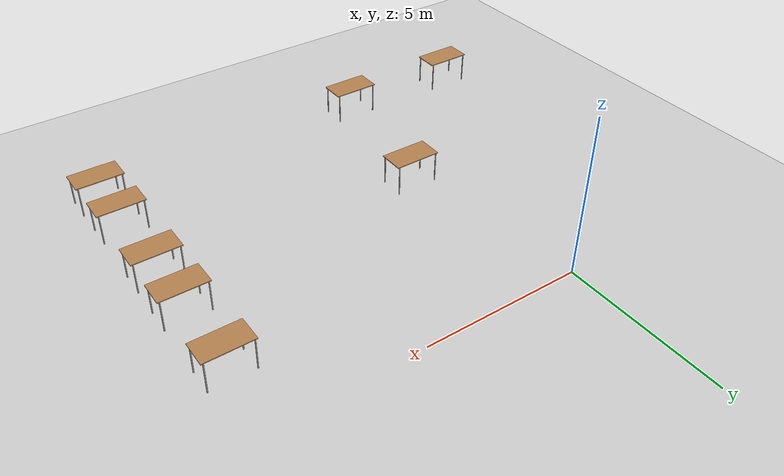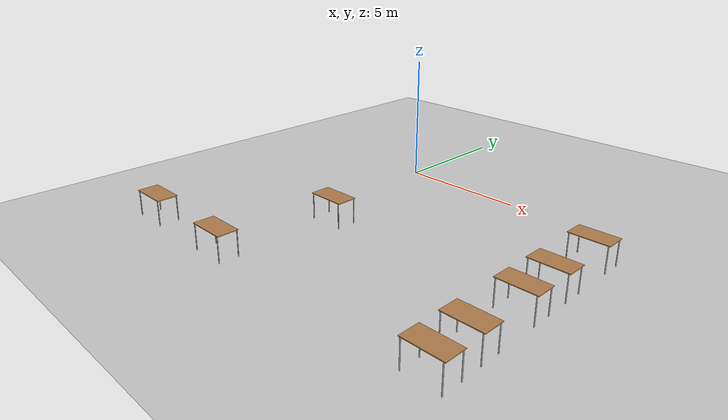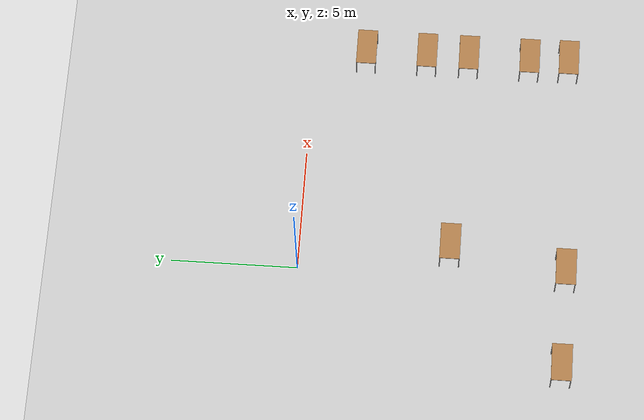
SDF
<sdf version="1.6">
 <world name="default">
  <model name="ground_plane">
   <static>1</static>
   <link name="link">
    <collision name="collision">
     <geometry><plane><normal>0 0 1</normal><size>100 100</size></plane></geometry>
     <surface><friction><ode><mu>100</mu><mu2>50</mu2></ode></friction></surface>
    </collision>
    <visual name="visual">
     <cast_shadows>0</cast_shadows>
     <geometry><plane><normal>0 0 1</normal><size>100 100</size></plane></geometry>
     <material>
      <script><uri>file://media/materials/scripts/gazebo.material</uri><name>Gazebo/Grey</name></script>
     </material>
    </visual>
   </link>
  </model>
  <model name="table_clone_1">
   <static>1</static>
   <link name="link">
    <collision name="surface">
     <pose>0 0 1 0 -0 0</pose>
     <geometry><box><size>1.5 0.8 0.03</size></box></geometry>
     <surface><friction><ode><mu>0.6</mu><mu2>0.6</mu2></ode></friction></surface>
    </collision>
    <visual name="visual1">
     <pose>0 0 1 0 -0 0</pose>
     <geometry><box><size>1.5 0.8 0.03</size></box></geometry>
     <material>
      <script><uri>file://media/materials/scripts/gazebo.material</uri><name>Gazebo/Wood</name></script>
     </material>
    </visual>
    <collision name="front_left_leg">
     <pose>0.68 0.38 0.5 0 -0 0</pose>
     <geometry><cylinder><radius>0.02</radius><length>1</length></cylinder></geometry>
    </collision>
    <visual name="front_left_leg">
     <pose>0.68 0.38 0.5 0 -0 0</pose>
     <geometry><cylinder><radius>0.02</radius><length>1</length></cylinder></geometry>
     <material>
      <script><uri>file://media/materials/scripts/gazebo.material</uri><name>Gazebo/Grey</name></script>
     </material>
    </visual>
    <collision name="front_right_leg">
     <pose>0.68 -0.38 0.5 0 -0 0</pose>
     <geometry><cylinder><radius>0.02</radius><length>1</length></cylinder></geometry>
    </collision>
    <visual name="front_right_leg">
     <pose>0.68 -0.38 0.5 0 -0 0</pose>
     <geometry><cylinder><radius>0.02</radius><length>1</length></cylinder></geometry>
     <material>
      <script><uri>file://media/materials/scripts/gazebo.material</uri><name>Gazebo/Grey</name></script>
     </material>
    </visual>
    <collision name="back_right_leg">
     <pose>-0.68 -0.38 0.5 0 -0 0</pose>
     <geometry><cylinder><radius>0.02</radius><length>1</length></cylinder></geometry>
    </collision>
    <visual name="back_right_leg">
     <pose>-0.68 -0.38 0.5 0 -0 0</pose>
     <geometry><cylinder><radius>0.02</radius><length>1</length></cylinder></geometry>
     <material>
      <script><uri>file://media/materials/scripts/gazebo.material</uri><name>Gazebo/Grey</name></script>
     </material>
    </visual>
    <collision name="back_left_leg">
     <pose>-0.68 0.38 0.5 0 -0 0</pose>
     <geometry><cylinder><radius>0.02</radius><length>1</length></cylinder></geometry>
    </collision>
    <visual name="back_left_leg">
     <pose>-0.68 0.38 0.5 0 -0 0</pose>
     <geometry><cylinder><radius>0.02</radius><length>1</length></cylinder></geometry>
     <material>
      <script><uri>file://media/materials/scripts/gazebo.material</uri><name>Gazebo/Grey</name></script>
     </material>
    </visual>
   </link>
   <pose>-3.63938 -10.5095 0 0 -0 0</pose>
  </model>
  <model name="table_clone_2">
   <static>1</static>
   <link name="link">
    <collision name="surface">
     <pose>0 0 1 0 -0 0</pose>
     <geometry><box><size>1.5 0.8 0.03</size></box></geometry>
     <surface><friction><ode><mu>0.6</mu><mu2>0.6</mu2></ode></friction></surface>
    </collision>
    <visual name="visual1">
     <pose>0 0 1 0 -0 0</pose>
     <geometry><box><size>1.5 0.8 0.03</size></box></geometry>
     <material>
      <script><uri>file://media/materials/scripts/gazebo.material</uri><name>Gazebo/Wood</name></script>
     </material>
    </visual>
    <collision name="front_left_leg">
     <pose>0.68 0.38 0.5 0 -0 0</pose>
     <geometry><cylinder><radius>0.02</radius><length>1</length></cylinder></geometry>
    </collision>
    <visual name="front_left_leg">
     <pose>0.68 0.38 0.5 0 -0 0</pose>
     <geometry><cylinder><radius>0.02</radius><length>1</length></cylinder></geometry>
     <material>
      <script><uri>file://media/materials/scripts/gazebo.material</uri><name>Gazebo/Grey</name></script>
     </material>
    </visual>
    <collision name="front_right_leg">
     <pose>0.68 -0.38 0.5 0 -0 0</pose>
     <geometry><cylinder><radius>0.02</radius><length>1</length></cylinder></geometry>
    </collision>
    <visual name="front_right_leg">
     <pose>0.68 -0.38 0.5 0 -0 0</pose>
     <geometry><cylinder><radius>0.02</radius><length>1</length></cylinder></geometry>
     <material>
      <script><uri>file://media/materials/scripts/gazebo.material</uri><name>Gazebo/Grey</name></script>
     </material>
    </visual>
    <collision name="back_right_leg">
     <pose>-0.68 -0.38 0.5 0 -0 0</pose>
     <geometry><cylinder><radius>0.02</radius><length>1</length></cylinder></geometry>
    </collision>
    <visual name="back_right_leg">
     <pose>-0.68 -0.38 0.5 0 -0 0</pose>
     <geometry><cylinder><radius>0.02</radius><length>1</length></cylinder></geometry>
     <material>
      <script><uri>file://media/materials/scripts/gazebo.material</uri><name>Gazebo/Grey</name></script>
     </material>
    </visual>
    <collision name="back_left_leg">
     <pose>-0.68 0.38 0.5 0 -0 0</pose>
     <geometry><cylinder><radius>0.02</radius><length>1</length></cylinder></geometry>
    </collision>
    <visual name="back_left_leg">
     <pose>-0.68 0.38 0.5 0 -0 0</pose>
     <geometry><cylinder><radius>0.02</radius><length>1</length></cylinder></geometry>
     <material>
      <script><uri>file://media/materials/scripts/gazebo.material</uri><name>Gazebo/Grey</name></script>
     </material>
    </visual>
   </link>
   <pose>0.34982 -10.5454 0 0 -0 0</pose>
  </model>
  <model name="table_clone_3">
   <static>1</static>
   <link name="link">
    <collision name="surface">
     <pose>0 0 1 0 -0 0</pose>
     <geometry><box><size>1.5 0.8 0.03</size></box></geometry>
     <surface><friction><ode><mu>0.6</mu><mu2>0.6</mu2></ode></friction></surface>
    </collision>
    <visual name="visual1">
     <pose>0 0 1 0 -0 0</pose>
     <geometry><box><size>1.5 0.8 0.03</size></box></geometry>
     <material>
      <script><uri>file://media/materials/scripts/gazebo.material</uri><name>Gazebo/Wood</name></script>
     </material>
    </visual>
    <collision name="front_left_leg">
     <pose>0.68 0.38 0.5 0 -0 0</pose>
     <geometry><cylinder><radius>0.02</radius><length>1</length></cylinder></geometry>
    </collision>
    <visual name="front_left_leg">
     <pose>0.68 0.38 0.5 0 -0 0</pose>
     <geometry><cylinder><radius>0.02</radius><length>1</length></cylinder></geometry>
     <material>
      <script><uri>file://media/materials/scripts/gazebo.material</uri><name>Gazebo/Grey</name></script>
     </material>
    </visual>
    <collision name="front_right_leg">
     <pose>0.68 -0.38 0.5 0 -0 0</pose>
     <geometry><cylinder><radius>0.02</radius><length>1</length></cylinder></geometry>
    </collision>
    <visual name="front_right_leg">
     <pose>0.68 -0.38 0.5 0 -0 0</pose>
     <geometry><cylinder><radius>0.02</radius><length>1</length></cylinder></geometry>
     <material>
      <script><uri>file://media/materials/scripts/gazebo.material</uri><name>Gazebo/Grey</name></script>
     </material>
    </visual>
    <collision name="back_right_leg">
     <pose>-0.68 -0.38 0.5 0 -0 0</pose>
     <geometry><cylinder><radius>0.02</radius><length>1</length></cylinder></geometry>
    </collision>
    <visual name="back_right_leg">
     <pose>-0.68 -0.38 0.5 0 -0 0</pose>
     <geometry><cylinder><radius>0.02</radius><length>1</length></cylinder></geometry>
     <material>
      <script><uri>file://media/materials/scripts/gazebo.material</uri><name>Gazebo/Grey</name></script>
     </material>
    </visual>
    <collision name="back_left_leg">
     <pose>-0.68 0.38 0.5 0 -0 0</pose>
     <geometry><cylinder><radius>0.02</radius><length>1</length></cylinder></geometry>
    </collision>
    <visual name="back_left_leg">
     <pose>-0.68 0.38 0.5 0 -0 0</pose>
     <geometry><cylinder><radius>0.02</radius><length>1</length></cylinder></geometry>
     <material>
      <script><uri>file://media/materials/scripts/gazebo.material</uri><name>Gazebo/Grey</name></script>
     </material>
    </visual>
   </link>
   <pose>1.13775 -5.96837 0 0 -0 0</pose>
  </model>
  <model name="table_clone_4">
   <static>1</static>
   <link name="link">
    <collision name="surface">
     <pose>0 0 1 0 -0 0</pose>
     <geometry><box><size>1.5 0.8 0.03</size></box></geometry>
     <surface><friction><ode><mu>0.6</mu><mu2>0.6</mu2></ode></friction></surface>
    </collision>
    <visual name="visual1">
     <pose>0 0 1 0 -0 0</pose>
     <geometry><box><size>1.5 0.8 0.03</size></box></geometry>
     <material>
      <script><uri>file://media/materials/scripts/gazebo.material</uri><name>Gazebo/Wood</name></script>
     </material>
    </visual>
    <collision name="front_left_leg">
     <pose>0.68 0.38 0.5 0 -0 0</pose>
     <geometry><cylinder><radius>0.02</radius><length>1</length></cylinder></geometry>
    </collision>
    <visual name="front_left_leg">
     <pose>0.68 0.38 0.5 0 -0 0</pose>
     <geometry><cylinder><radius>0.02</radius><length>1</length></cylinder></geometry>
     <material>
      <script><uri>file://media/materials/scripts/gazebo.material</uri><name>Gazebo/Grey</name></script>
     </material>
    </visual>
    <collision name="front_right_leg">
     <pose>0.68 -0.38 0.5 0 -0 0</pose>
     <geometry><cylinder><radius>0.02</radius><length>1</length></cylinder></geometry>
    </collision>
    <visual name="front_right_leg">
     <pose>0.68 -0.38 0.5 0 -0 0</pose>
     <geometry><cylinder><radius>0.02</radius><length>1</length></cylinder></geometry>
     <material>
      <script><uri>file://media/materials/scripts/gazebo.material</uri><name>Gazebo/Grey</name></script>
     </material>
    </visual>
    <collision name="back_right_leg">
     <pose>-0.68 -0.38 0.5 0 -0 0</pose>
     <geometry><cylinder><radius>0.02</radius><length>1</length></cylinder></geometry>
    </collision>
    <visual name="back_right_leg">
     <pose>-0.68 -0.38 0.5 0 -0 0</pose>
     <geometry><cylinder><radius>0.02</radius><length>1</length></cylinder></geometry>
     <material>
      <script><uri>file://media/materials/scripts/gazebo.material</uri><name>Gazebo/Grey</name></script>
     </material>
    </visual>
    <collision name="back_left_leg">
     <pose>-0.68 0.38 0.5 0 -0 0</pose>
     <geometry><cylinder><radius>0.02</radius><length>1</length></cylinder></geometry>
    </collision>
    <visual name="back_left_leg">
     <pose>-0.68 0.38 0.5 0 -0 0</pose>
     <geometry><cylinder><radius>0.02</radius><length>1</length></cylinder></geometry>
     <material>
      <script><uri>file://media/materials/scripts/gazebo.material</uri><name>Gazebo/Grey</name></script>
     </material>
    </visual>
   </link>
   <pose>9.53384 -10.3559 0 0 -0 0</pose>
  </model>
  <model name="table_clone_5">
   <static>1</static>
   <link name="link">
    <collision name="surface">
     <pose>0 0 1 0 -0 0</pose>
     <geometry><box><size>1.5 0.8 0.03</size></box></geometry>
     <surface><friction><ode><mu>0.6</mu><mu2>0.6</mu2></ode></friction></surface>
    </collision>
    <visual name="visual1">
     <pose>0 0 1 0 -0 0</pose>
     <geometry><box><size>1.5 0.8 0.03</size></box></geometry>
     <material>
      <script><uri>file://media/materials/scripts/gazebo.material</uri><name>Gazebo/Wood</name></script>
     </material>
    </visual>
    <collision name="front_left_leg">
     <pose>0.68 0.38 0.5 0 -0 0</pose>
     <geometry><cylinder><radius>0.02</radius><length>1</length></cylinder></geometry>
    </collision>
    <visual name="front_left_leg">
     <pose>0.68 0.38 0.5 0 -0 0</pose>
     <geometry><cylinder><radius>0.02</radius><length>1</length></cylinder></geometry>
     <material>
      <script><uri>file://media/materials/scripts/gazebo.material</uri><name>Gazebo/Grey</name></script>
     </material>
    </visual>
    <collision name="front_right_leg">
     <pose>0.68 -0.38 0.5 0 -0 0</pose>
     <geometry><cylinder><radius>0.02</radius><length>1</length></cylinder></geometry>
    </collision>
    <visual name="front_right_leg">
     <pose>0.68 -0.38 0.5 0 -0 0</pose>
     <geometry><cylinder><radius>0.02</radius><length>1</length></cylinder></geometry>
     <material>
      <script><uri>file://media/materials/scripts/gazebo.material</uri><name>Gazebo/Grey</name></script>
     </material>
    </visual>
    <collision name="back_right_leg">
     <pose>-0.68 -0.38 0.5 0 -0 0</pose>
     <geometry><cylinder><radius>0.02</radius><length>1</length></cylinder></geometry>
    </collision>
    <visual name="back_right_leg">
     <pose>-0.68 -0.38 0.5 0 -0 0</pose>
     <geometry><cylinder><radius>0.02</radius><length>1</length></cylinder></geometry>
     <material>
      <script><uri>file://media/materials/scripts/gazebo.material</uri><name>Gazebo/Grey</name></script>
     </material>
    </visual>
    <collision name="back_left_leg">
     <pose>-0.68 0.38 0.5 0 -0 0</pose>
     <geometry><cylinder><radius>0.02</radius><length>1</length></cylinder></geometry>
    </collision>
    <visual name="back_left_leg">
     <pose>-0.68 0.38 0.5 0 -0 0</pose>
     <geometry><cylinder><radius>0.02</radius><length>1</length></cylinder></geometry>
     <material>
      <script><uri>file://media/materials/scripts/gazebo.material</uri><name>Gazebo/Grey</name></script>
     </material>
    </visual>
   </link>
   <pose>9.50341 -8.76744 0 0 -0 0</pose>
  </model>
  <model name="table_clone_6">
   <static>1</static>
   <link name="link">
    <collision name="surface">
     <pose>0 0 1 0 -0 0</pose>
     <geometry><box><size>1.5 0.8 0.03</size></box></geometry>
     <surface><friction><ode><mu>0.6</mu><mu2>0.6</mu2></ode></friction></surface>
    </collision>
    <visual name="visual1">
     <pose>0 0 1 0 -0 0</pose>
     <geometry><box><size>1.5 0.8 0.03</size></box></geometry>
     <material>
      <script><uri>file://media/materials/scripts/gazebo.material</uri><name>Gazebo/Wood</name></script>
     </material>
    </visual>
    <collision name="front_left_leg">
     <pose>0.68 0.38 0.5 0 -0 0</pose>
     <geometry><cylinder><radius>0.02</radius><length>1</length></cylinder></geometry>
    </collision>
    <visual name="front_left_leg">
     <pose>0.68 0.38 0.5 0 -0 0</pose>
     <geometry><cylinder><radius>0.02</radius><length>1</length></cylinder></geometry>
     <material>
      <script><uri>file://media/materials/scripts/gazebo.material</uri><name>Gazebo/Grey</name></script>
     </material>
    </visual>
    <collision name="front_right_leg">
     <pose>0.68 -0.38 0.5 0 -0 0</pose>
     <geometry><cylinder><radius>0.02</radius><length>1</length></cylinder></geometry>
    </collision>
    <visual name="front_right_leg">
     <pose>0.68 -0.38 0.5 0 -0 0</pose>
     <geometry><cylinder><radius>0.02</radius><length>1</length></cylinder></geometry>
     <material>
      <script><uri>file://media/materials/scripts/gazebo.material</uri><name>Gazebo/Grey</name></script>
     </material>
    </visual>
    <collision name="back_right_leg">
     <pose>-0.68 -0.38 0.5 0 -0 0</pose>
     <geometry><cylinder><radius>0.02</radius><length>1</length></cylinder></geometry>
    </collision>
    <visual name="back_right_leg">
     <pose>-0.68 -0.38 0.5 0 -0 0</pose>
     <geometry><cylinder><radius>0.02</radius><length>1</length></cylinder></geometry>
     <material>
      <script><uri>file://media/materials/scripts/gazebo.material</uri><name>Gazebo/Grey</name></script>
     </material>
    </visual>
    <collision name="back_left_leg">
     <pose>-0.68 0.38 0.5 0 -0 0</pose>
     <geometry><cylinder><radius>0.02</radius><length>1</length></cylinder></geometry>
    </collision>
    <visual name="back_left_leg">
     <pose>-0.68 0.38 0.5 0 -0 0</pose>
     <geometry><cylinder><radius>0.02</radius><length>1</length></cylinder></geometry>
     <material>
      <script><uri>file://media/materials/scripts/gazebo.material</uri><name>Gazebo/Grey</name></script>
     </material>
    </visual>
   </link>
   <pose>9.49717 -6.30133 0 0 -0 0</pose>
  </model>
  <model name="table_clone_7">
   <static>1</static>
   <link name="link">
    <collision name="surface">
     <pose>0 0 1 0 -0 0</pose>
     <geometry><box><size>1.5 0.8 0.03</size></box></geometry>
     <surface><friction><ode><mu>0.6</mu><mu2>0.6</mu2></ode></friction></surface>
    </collision>
    <visual name="visual1">
     <pose>0 0 1 0 -0 0</pose>
     <geometry><box><size>1.5 0.8 0.03</size></box></geometry>
     <material>
      <script><uri>file://media/materials/scripts/gazebo.material</uri><name>Gazebo/Wood</name></script>
     </material>
    </visual>
    <collision name="front_left_leg">
     <pose>0.68 0.38 0.5 0 -0 0</pose>
     <geometry><cylinder><radius>0.02</radius><length>1</length></cylinder></geometry>
    </collision>
    <visual name="front_left_leg">
     <pose>0.68 0.38 0.5 0 -0 0</pose>
     <geometry><cylinder><radius>0.02</radius><length>1</length></cylinder></geometry>
     <material>
      <script><uri>file://media/materials/scripts/gazebo.material</uri><name>Gazebo/Grey</name></script>
     </material>
    </visual>
    <collision name="front_right_leg">
     <pose>0.68 -0.38 0.5 0 -0 0</pose>
     <geometry><cylinder><radius>0.02</radius><length>1</length></cylinder></geometry>
    </collision>
    <visual name="front_right_leg">
     <pose>0.68 -0.38 0.5 0 -0 0</pose>
     <geometry><cylinder><radius>0.02</radius><length>1</length></cylinder></geometry>
     <material>
      <script><uri>file://media/materials/scripts/gazebo.material</uri><name>Gazebo/Grey</name></script>
     </material>
    </visual>
    <collision name="back_right_leg">
     <pose>-0.68 -0.38 0.5 0 -0 0</pose>
     <geometry><cylinder><radius>0.02</radius><length>1</length></cylinder></geometry>
    </collision>
    <visual name="back_right_leg">
     <pose>-0.68 -0.38 0.5 0 -0 0</pose>
     <geometry><cylinder><radius>0.02</radius><length>1</length></cylinder></geometry>
     <material>
      <script><uri>file://media/materials/scripts/gazebo.material</uri><name>Gazebo/Grey</name></script>
     </material>
    </visual>
    <collision name="back_left_leg">
     <pose>-0.68 0.38 0.5 0 -0 0</pose>
     <geometry><cylinder><radius>0.02</radius><length>1</length></cylinder></geometry>
    </collision>
    <visual name="back_left_leg">
     <pose>-0.68 0.38 0.5 0 -0 0</pose>
     <geometry><cylinder><radius>0.02</radius><length>1</length></cylinder></geometry>
     <material>
      <script><uri>file://media/materials/scripts/gazebo.material</uri><name>Gazebo/Grey</name></script>
     </material>
    </visual>
   </link>
   <pose>9.49298 -4.60084 0 0 -0 0</pose>
  </model>
  <model name="table_clone_8">
   <static>1</static>
   <link name="link">
    <collision name="surface">
     <pose>0 0 1 0 -0 0</pose>
     <geometry><box><size>1.5 0.8 0.03</size></box></geometry>
     <surface><friction><ode><mu>0.6</mu><mu2>0.6</mu2></ode></friction></surface>
    </collision>
    <visual name="visual1">
     <pose>0 0 1 0 -0 0</pose>
     <geometry><box><size>1.5 0.8 0.03</size></box></geometry>
     <material>
      <script><uri>file://media/materials/scripts/gazebo.material</uri><name>Gazebo/Wood</name></script>
     </material>
    </visual>
    <collision name="front_left_leg">
     <pose>0.68 0.38 0.5 0 -0 0</pose>
     <geometry><cylinder><radius>0.02</radius><length>1</length></cylinder></geometry>
    </collision>
    <visual name="front_left_leg">
     <pose>0.68 0.38 0.5 0 -0 0</pose>
     <geometry><cylinder><radius>0.02</radius><length>1</length></cylinder></geometry>
     <material>
      <script><uri>file://media/materials/scripts/gazebo.material</uri><name>Gazebo/Grey</name></script>
     </material>
    </visual>
    <collision name="front_right_leg">
     <pose>0.68 -0.38 0.5 0 -0 0</pose>
     <geometry><cylinder><radius>0.02</radius><length>1</length></cylinder></geometry>
    </collision>
    <visual name="front_right_leg">
     <pose>0.68 -0.38 0.5 0 -0 0</pose>
     <geometry><cylinder><radius>0.02</radius><length>1</length></cylinder></geometry>
     <material>
      <script><uri>file://media/materials/scripts/gazebo.material</uri><name>Gazebo/Grey</name></script>
     </material>
    </visual>
    <collision name="back_right_leg">
     <pose>-0.68 -0.38 0.5 0 -0 0</pose>
     <geometry><cylinder><radius>0.02</radius><length>1</length></cylinder></geometry>
    </collision>
    <visual name="back_right_leg">
     <pose>-0.68 -0.38 0.5 0 -0 0</pose>
     <geometry><cylinder><radius>0.02</radius><length>1</length></cylinder></geometry>
     <material>
      <script><uri>file://media/materials/scripts/gazebo.material</uri><name>Gazebo/Grey</name></script>
     </material>
    </visual>
    <collision name="back_left_leg">
     <pose>-0.68 0.38 0.5 0 -0 0</pose>
     <geometry><cylinder><radius>0.02</radius><length>1</length></cylinder></geometry>
    </collision>
    <visual name="back_left_leg">
     <pose>-0.68 0.38 0.5 0 -0 0</pose>
     <geometry><cylinder><radius>0.02</radius><length>1</length></cylinder></geometry>
     <material>
      <script><uri>file://media/materials/scripts/gazebo.material</uri><name>Gazebo/Grey</name></script>
     </material>
    </visual>
   </link>
   <pose>9.48538 -2.14488 0 0 -0 0</pose>
  </model>
 </world>
</sdf>
